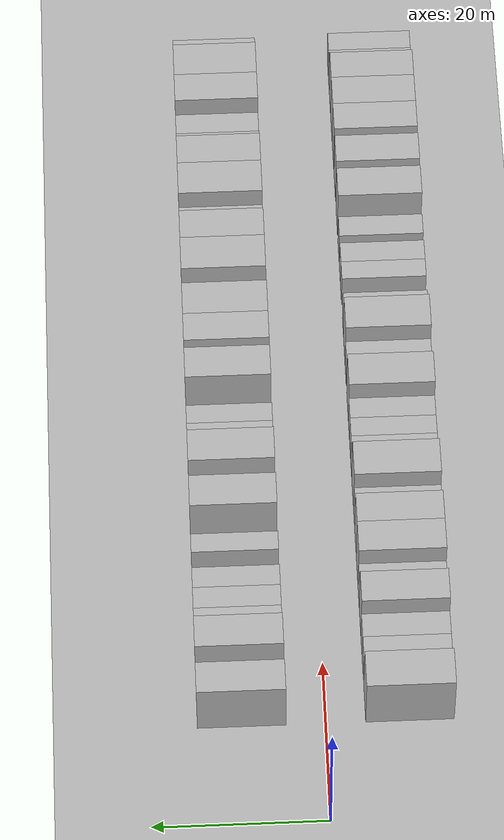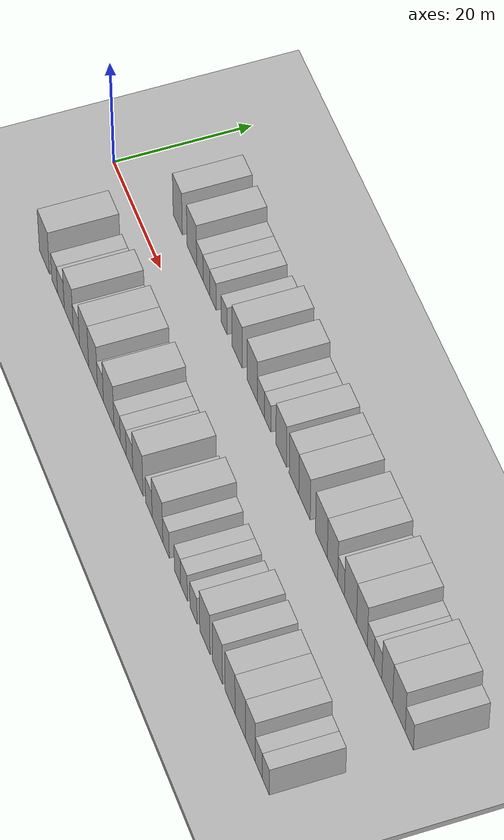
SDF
<sdf version="1.6">
 <world name="default">
  <include><name>ground_plane_1</name><uri>model://HANNAS_ground_plane</uri></include>
  <include>
   <name>ground_plane_2</name>
   <uri>model://HANNAS_ground_plane</uri>
   <pose>100 0 0  0 0 0</pose>
  </include>
  <model name="building_1">
   <static>1</static>
   <pose>13.9104 9.5000 0 0.000000 0.000000 1.570796</pose>
   <link name="link">
    <pose>0 0 4.50 0 0 0</pose>
    <collision name="collision"><geometry><box><size>10.0000 3.8207 9.0000</size></box></geometry></collision>
    <visual name="visual">
     <cast_shadows>0</cast_shadows>
     <geometry><box><size>10.0000 3.8207 9.0000</size></box></geometry>
     <material>
      <script>
       <uri>model://HANNAS_wall/materials/scripts</uri>
       <uri>model://HANNAS_wall/materials/textures</uri>
       <name>vrc/HANNAS_wall</name>
      </script>
     </material>
    </visual>
   </link>
  </model>
  <model name="building_2">
   <static>1</static>
   <pose>19.7886 9.5000 0 0.000000 0.000000 1.570796</pose>
   <link name="link">
    <pose>0 0 4.50 0 0 0</pose>
    <collision name="collision"><geometry><box><size>10.0000 3.9357 9.0000</size></box></geometry></collision>
    <visual name="visual">
     <cast_shadows>0</cast_shadows>
     <geometry><box><size>10.0000 3.9357 9.0000</size></box></geometry>
     <material>
      <script>
       <uri>model://HANNAS_wall/materials/scripts</uri>
       <uri>model://HANNAS_wall/materials/textures</uri>
       <name>vrc/HANNAS_wall</name>
      </script>
     </material>
    </visual>
   </link>
  </model>
  <model name="building_3">
   <static>1</static>
   <pose>23.0995 9.5000 0 0.000000 0.000000 1.570796</pose>
   <link name="link">
    <pose>0 0 3.00 0 0 0</pose>
    <collision name="collision"><geometry><box><size>10.0000 2.6862 6.0000</size></box></geometry></collision>
    <visual name="visual">
     <cast_shadows>0</cast_shadows>
     <geometry><box><size>10.0000 2.6862 6.0000</size></box></geometry>
     <material>
      <script>
       <uri>model://HANNAS_wall/materials/scripts</uri>
       <uri>model://HANNAS_wall/materials/textures</uri>
       <name>vrc/HANNAS_wall</name>
      </script>
     </material>
    </visual>
   </link>
  </model>
  <model name="building_4">
   <static>1</static>
   <pose>25.7818 9.5000 0 0.000000 0.000000 1.570796</pose>
   <link name="link">
    <pose>0 0 3.00 0 0 0</pose>
    <collision name="collision"><geometry><box><size>10.0000 2.6783 6.0000</size></box></geometry></collision>
    <visual name="visual">
     <cast_shadows>0</cast_shadows>
     <geometry><box><size>10.0000 2.6783 6.0000</size></box></geometry>
     <material>
      <script>
       <uri>model://HANNAS_wall/materials/scripts</uri>
       <uri>model://HANNAS_wall/materials/textures</uri>
       <name>vrc/HANNAS_wall</name>
      </script>
     </material>
    </visual>
   </link>
  </model>
  <model name="building_5">
   <static>1</static>
   <pose>28.4317 9.5000 0 0.000000 0.000000 1.570796</pose>
   <link name="link">
    <pose>0 0 3.00 0 0 0</pose>
    <collision name="collision"><geometry><box><size>10.0000 2.6215 6.0000</size></box></geometry></collision>
    <visual name="visual">
     <cast_shadows>0</cast_shadows>
     <geometry><box><size>10.0000 2.6215 6.0000</size></box></geometry>
     <material>
      <script>
       <uri>model://HANNAS_wall/materials/scripts</uri>
       <uri>model://HANNAS_wall/materials/textures</uri>
       <name>vrc/HANNAS_wall</name>
      </script>
     </material>
    </visual>
   </link>
  </model>
  <model name="building_6">
   <static>1</static>
   <pose>32.9485 9.5000 0 0.000000 0.000000 1.570796</pose>
   <link name="link">
    <pose>0 0 3.00 0 0 0</pose>
    <collision name="collision"><geometry><box><size>10.0000 2.4121 6.0000</size></box></geometry></collision>
    <visual name="visual">
     <cast_shadows>0</cast_shadows>
     <geometry><box><size>10.0000 2.4121 6.0000</size></box></geometry>
     <material>
      <script>
       <uri>model://HANNAS_wall/materials/scripts</uri>
       <uri>model://HANNAS_wall/materials/textures</uri>
       <name>vrc/HANNAS_wall</name>
      </script>
     </material>
    </visual>
   </link>
  </model>
  <model name="building_7">
   <static>1</static>
   <pose>38.1635 9.5000 0 0.000000 0.000000 1.570796</pose>
   <link name="link">
    <pose>0 0 4.50 0 0 0</pose>
    <collision name="collision"><geometry><box><size>10.0000 4.0180 9.0000</size></box></geometry></collision>
    <visual name="visual">
     <cast_shadows>0</cast_shadows>
     <geometry><box><size>10.0000 4.0180 9.0000</size></box></geometry>
     <material>
      <script>
       <uri>model://HANNAS_wall/materials/scripts</uri>
       <uri>model://HANNAS_wall/materials/textures</uri>
       <name>vrc/HANNAS_wall</name>
      </script>
     </material>
    </visual>
   </link>
  </model>
  <model name="building_8">
   <static>1</static>
   <pose>44.2379 9.5000 0 0.000000 0.000000 1.570796</pose>
   <link name="link">
    <pose>0 0 4.50 0 0 0</pose>
    <collision name="collision"><geometry><box><size>10.0000 4.1307 9.0000</size></box></geometry></collision>
    <visual name="visual">
     <cast_shadows>0</cast_shadows>
     <geometry><box><size>10.0000 4.1307 9.0000</size></box></geometry>
     <material>
      <script>
       <uri>model://HANNAS_wall/materials/scripts</uri>
       <uri>model://HANNAS_wall/materials/textures</uri>
       <name>vrc/HANNAS_wall</name>
      </script>
     </material>
    </visual>
   </link>
  </model>
  <model name="building_9">
   <static>1</static>
   <pose>47.6634 9.5000 0 0.000000 0.000000 1.570796</pose>
   <link name="link">
    <pose>0 0 3.00 0 0 0</pose>
    <collision name="collision"><geometry><box><size>10.0000 2.7204 6.0000</size></box></geometry></collision>
    <visual name="visual">
     <cast_shadows>0</cast_shadows>
     <geometry><box><size>10.0000 2.7204 6.0000</size></box></geometry>
     <material>
      <script>
       <uri>model://HANNAS_wall/materials/scripts</uri>
       <uri>model://HANNAS_wall/materials/textures</uri>
       <name>vrc/HANNAS_wall</name>
      </script>
     </material>
    </visual>
   </link>
  </model>
  <model name="building_10">
   <static>1</static>
   <pose>50.2555 9.5000 0 0.000000 0.000000 1.570796</pose>
   <link name="link">
    <pose>0 0 3.00 0 0 0</pose>
    <collision name="collision"><geometry><box><size>10.0000 2.4636 6.0000</size></box></geometry></collision>
    <visual name="visual">
     <cast_shadows>0</cast_shadows>
     <geometry><box><size>10.0000 2.4636 6.0000</size></box></geometry>
     <material>
      <script>
       <uri>model://HANNAS_wall/materials/scripts</uri>
       <uri>model://HANNAS_wall/materials/textures</uri>
       <name>vrc/HANNAS_wall</name>
      </script>
     </material>
    </visual>
   </link>
  </model>
  <model name="building_11">
   <static>1</static>
   <pose>55.5296 9.5000 0 0.000000 0.000000 1.570796</pose>
   <link name="link">
    <pose>0 0 4.50 0 0 0</pose>
    <collision name="collision"><geometry><box><size>10.0000 4.0846 9.0000</size></box></geometry></collision>
    <visual name="visual">
     <cast_shadows>0</cast_shadows>
     <geometry><box><size>10.0000 4.0846 9.0000</size></box></geometry>
     <material>
      <script>
       <uri>model://HANNAS_wall/materials/scripts</uri>
       <uri>model://HANNAS_wall/materials/textures</uri>
       <name>vrc/HANNAS_wall</name>
      </script>
     </material>
    </visual>
   </link>
  </model>
  <model name="building_12">
   <static>1</static>
   <pose>60.4304 9.5000 0 0.000000 0.000000 1.570796</pose>
   <link name="link">
    <pose>0 0 4.50 0 0 0</pose>
    <collision name="collision"><geometry><box><size>10.0000 3.7170 9.0000</size></box></geometry></collision>
    <visual name="visual">
     <cast_shadows>0</cast_shadows>
     <geometry><box><size>10.0000 3.7170 9.0000</size></box></geometry>
     <material>
      <script>
       <uri>model://HANNAS_wall/materials/scripts</uri>
       <uri>model://HANNAS_wall/materials/textures</uri>
       <name>vrc/HANNAS_wall</name>
      </script>
     </material>
    </visual>
   </link>
  </model>
  <model name="building_13">
   <static>1</static>
   <pose>64.4429 9.5000 0 0.000000 0.000000 1.570796</pose>
   <link name="link">
    <pose>0 0 4.50 0 0 0</pose>
    <collision name="collision"><geometry><box><size>10.0000 4.3080 9.0000</size></box></geometry></collision>
    <visual name="visual">
     <cast_shadows>0</cast_shadows>
     <geometry><box><size>10.0000 4.3080 9.0000</size></box></geometry>
     <material>
      <script>
       <uri>model://HANNAS_wall/materials/scripts</uri>
       <uri>model://HANNAS_wall/materials/textures</uri>
       <name>vrc/HANNAS_wall</name>
      </script>
     </material>
    </visual>
   </link>
  </model>
  <model name="building_14">
   <static>1</static>
   <pose>70.8151 9.5000 0 0.000000 0.000000 1.570796</pose>
   <link name="link">
    <pose>0 0 4.50 0 0 0</pose>
    <collision name="collision"><geometry><box><size>10.0000 4.4365 9.0000</size></box></geometry></collision>
    <visual name="visual">
     <cast_shadows>0</cast_shadows>
     <geometry><box><size>10.0000 4.4365 9.0000</size></box></geometry>
     <material>
      <script>
       <uri>model://HANNAS_wall/materials/scripts</uri>
       <uri>model://HANNAS_wall/materials/textures</uri>
       <name>vrc/HANNAS_wall</name>
      </script>
     </material>
    </visual>
   </link>
  </model>
  <model name="building_15">
   <static>1</static>
   <pose>74.9589 9.5000 0 0.000000 0.000000 1.570796</pose>
   <link name="link">
    <pose>0 0 4.50 0 0 0</pose>
    <collision name="collision"><geometry><box><size>10.0000 3.8510 9.0000</size></box></geometry></collision>
    <visual name="visual">
     <cast_shadows>0</cast_shadows>
     <geometry><box><size>10.0000 3.8510 9.0000</size></box></geometry>
     <material>
      <script>
       <uri>model://HANNAS_wall/materials/scripts</uri>
       <uri>model://HANNAS_wall/materials/textures</uri>
       <name>vrc/HANNAS_wall</name>
      </script>
     </material>
    </visual>
   </link>
  </model>
  <model name="building_16">
   <static>1</static>
   <pose>78.1295 9.5000 0 0.000000 0.000000 1.570796</pose>
   <link name="link">
    <pose>0 0 3.00 0 0 0</pose>
    <collision name="collision"><geometry><box><size>10.0000 2.4902 6.0000</size></box></geometry></collision>
    <visual name="visual">
     <cast_shadows>0</cast_shadows>
     <geometry><box><size>10.0000 2.4902 6.0000</size></box></geometry>
     <material>
      <script>
       <uri>model://HANNAS_wall/materials/scripts</uri>
       <uri>model://HANNAS_wall/materials/textures</uri>
       <name>vrc/HANNAS_wall</name>
      </script>
     </material>
    </visual>
   </link>
  </model>
  <model name="building_17">
   <static>1</static>
   <pose>81.5890 9.5000 0 0.000000 0.000000 1.570796</pose>
   <link name="link">
    <pose>0 0 4.50 0 0 0</pose>
    <collision name="collision"><geometry><box><size>10.0000 4.4287 9.0000</size></box></geometry></collision>
    <visual name="visual">
     <cast_shadows>0</cast_shadows>
     <geometry><box><size>10.0000 4.4287 9.0000</size></box></geometry>
     <material>
      <script>
       <uri>model://HANNAS_wall/materials/scripts</uri>
       <uri>model://HANNAS_wall/materials/textures</uri>
       <name>vrc/HANNAS_wall</name>
      </script>
     </material>
    </visual>
   </link>
  </model>
  <model name="building_18">
   <static>1</static>
   <pose>85.7717 9.5000 0 0.000000 0.000000 1.570796</pose>
   <link name="link">
    <pose>0 0 4.50 0 0 0</pose>
    <collision name="collision"><geometry><box><size>10.0000 3.9368 9.0000</size></box></geometry></collision>
    <visual name="visual">
     <cast_shadows>0</cast_shadows>
     <geometry><box><size>10.0000 3.9368 9.0000</size></box></geometry>
     <material>
      <script>
       <uri>model://HANNAS_wall/materials/scripts</uri>
       <uri>model://HANNAS_wall/materials/textures</uri>
       <name>vrc/HANNAS_wall</name>
      </script>
     </material>
    </visual>
   </link>
  </model>
  <model name="building_19">
   <static>1</static>
   <pose>88.9644 9.5000 0 0.000000 0.000000 1.570796</pose>
   <link name="link">
    <pose>0 0 3.00 0 0 0</pose>
    <collision name="collision"><geometry><box><size>10.0000 2.4485 6.0000</size></box></geometry></collision>
    <visual name="visual">
     <cast_shadows>0</cast_shadows>
     <geometry><box><size>10.0000 2.4485 6.0000</size></box></geometry>
     <material>
      <script>
       <uri>model://HANNAS_wall/materials/scripts</uri>
       <uri>model://HANNAS_wall/materials/textures</uri>
       <name>vrc/HANNAS_wall</name>
      </script>
     </material>
    </visual>
   </link>
  </model>
  <model name="building_20">
   <static>1</static>
   <pose>91.5721 9.5000 0 0.000000 0.000000 1.570796</pose>
   <link name="link">
    <pose>0 0 3.00 0 0 0</pose>
    <collision name="collision"><geometry><box><size>10.0000 2.7670 6.0000</size></box></geometry></collision>
    <visual name="visual">
     <cast_shadows>0</cast_shadows>
     <geometry><box><size>10.0000 2.7670 6.0000</size></box></geometry>
     <material>
      <script>
       <uri>model://HANNAS_wall/materials/scripts</uri>
       <uri>model://HANNAS_wall/materials/textures</uri>
       <name>vrc/HANNAS_wall</name>
      </script>
     </material>
    </visual>
   </link>
  </model>
  <model name="building_21">
   <static>1</static>
   <pose>94.8880 9.5000 0 0.000000 0.000000 1.570796</pose>
   <link name="link">
    <pose>0 0 4.50 0 0 0</pose>
    <collision name="collision"><geometry><box><size>10.0000 3.8647 9.0000</size></box></geometry></collision>
    <visual name="visual">
     <cast_shadows>0</cast_shadows>
     <geometry><box><size>10.0000 3.8647 9.0000</size></box></geometry>
     <material>
      <script>
       <uri>model://HANNAS_wall/materials/scripts</uri>
       <uri>model://HANNAS_wall/materials/textures</uri>
       <name>vrc/HANNAS_wall</name>
      </script>
     </material>
    </visual>
   </link>
  </model>
  <model name="building_22">
   <static>1</static>
   <pose>99.0522 9.5000 0 0.000000 0.000000 1.570796</pose>
   <link name="link">
    <pose>0 0 4.50 0 0 0</pose>
    <collision name="collision"><geometry><box><size>10.0000 4.4638 9.0000</size></box></geometry></collision>
    <visual name="visual">
     <cast_shadows>0</cast_shadows>
     <geometry><box><size>10.0000 4.4638 9.0000</size></box></geometry>
     <material>
      <script>
       <uri>model://HANNAS_wall/materials/scripts</uri>
       <uri>model://HANNAS_wall/materials/textures</uri>
       <name>vrc/HANNAS_wall</name>
      </script>
     </material>
    </visual>
   </link>
  </model>
  <model name="building_23">
   <static>1</static>
   <pose>102.7219 9.5000 0 0.000000 0.000000 1.570796</pose>
   <link name="link">
    <pose>0 0 3.00 0 0 0</pose>
    <collision name="collision"><geometry><box><size>10.0000 2.8756 6.0000</size></box></geometry></collision>
    <visual name="visual">
     <cast_shadows>0</cast_shadows>
     <geometry><box><size>10.0000 2.8756 6.0000</size></box></geometry>
     <material>
      <script>
       <uri>model://HANNAS_wall/materials/scripts</uri>
       <uri>model://HANNAS_wall/materials/textures</uri>
       <name>vrc/HANNAS_wall</name>
      </script>
     </material>
    </visual>
   </link>
  </model>
  <model name="building_49">
   <static>1</static>
   <pose>14.2105 -9.5000 0 0.000000 0.000000 1.570796</pose>
   <link name="link">
    <pose>0 0 4.50 0 0 0</pose>
    <collision name="collision"><geometry><box><size>10.0000 4.4210 9.0000</size></box></geometry></collision>
    <visual name="visual">
     <cast_shadows>0</cast_shadows>
     <geometry><box><size>10.0000 4.4210 9.0000</size></box></geometry>
     <material>
      <script>
       <uri>model://HANNAS_wall/materials/scripts</uri>
       <uri>model://HANNAS_wall/materials/textures</uri>
       <name>vrc/HANNAS_wall</name>
      </script>
     </material>
    </visual>
   </link>
  </model>
  <model name="building_50">
   <static>1</static>
   <pose>18.6855 -9.5000 0 0.000000 0.000000 1.570796</pose>
   <link name="link">
    <pose>0 0 3.00 0 0 0</pose>
    <collision name="collision"><geometry><box><size>10.0000 2.5291 6.0000</size></box></geometry></collision>
    <visual name="visual">
     <cast_shadows>0</cast_shadows>
     <geometry><box><size>10.0000 2.5291 6.0000</size></box></geometry>
     <material>
      <script>
       <uri>model://HANNAS_wall/materials/scripts</uri>
       <uri>model://HANNAS_wall/materials/textures</uri>
       <name>vrc/HANNAS_wall</name>
      </script>
     </material>
    </visual>
   </link>
  </model>
  <model name="building_51">
   <static>1</static>
   <pose>21.4126 -9.5000 0 0.000000 0.000000 1.570796</pose>
   <link name="link">
    <pose>0 0 3.00 0 0 0</pose>
    <collision name="collision"><geometry><box><size>10.0000 2.9251 6.0000</size></box></geometry></collision>
    <visual name="visual">
     <cast_shadows>0</cast_shadows>
     <geometry><box><size>10.0000 2.9251 6.0000</size></box></geometry>
     <material>
      <script>
       <uri>model://HANNAS_wall/materials/scripts</uri>
       <uri>model://HANNAS_wall/materials/textures</uri>
       <name>vrc/HANNAS_wall</name>
      </script>
     </material>
    </visual>
   </link>
  </model>
  <model name="building_52">
   <static>1</static>
   <pose>24.7919 -9.5000 0 0.000000 0.000000 1.570796</pose>
   <link name="link">
    <pose>0 0 4.50 0 0 0</pose>
    <collision name="collision"><geometry><box><size>10.0000 3.8335 9.0000</size></box></geometry></collision>
    <visual name="visual">
     <cast_shadows>0</cast_shadows>
     <geometry><box><size>10.0000 3.8335 9.0000</size></box></geometry>
     <material>
      <script>
       <uri>model://HANNAS_wall/materials/scripts</uri>
       <uri>model://HANNAS_wall/materials/textures</uri>
       <name>vrc/HANNAS_wall</name>
      </script>
     </material>
    </visual>
   </link>
  </model>
  <model name="building_53">
   <static>1</static>
   <pose>28.0637 -9.5000 0 0.000000 0.000000 1.570796</pose>
   <link name="link">
    <pose>0 0 3.00 0 0 0</pose>
    <collision name="collision"><geometry><box><size>10.0000 2.7101 6.0000</size></box></geometry></collision>
    <visual name="visual">
     <cast_shadows>0</cast_shadows>
     <geometry><box><size>10.0000 2.7101 6.0000</size></box></geometry>
     <material>
      <script>
       <uri>model://HANNAS_wall/materials/scripts</uri>
       <uri>model://HANNAS_wall/materials/textures</uri>
       <name>vrc/HANNAS_wall</name>
      </script>
     </material>
    </visual>
   </link>
  </model>
  <model name="building_54">
   <static>1</static>
   <pose>31.3516 -9.5000 0 0.000000 0.000000 1.570796</pose>
   <link name="link">
    <pose>0 0 4.50 0 0 0</pose>
    <collision name="collision"><geometry><box><size>10.0000 3.8658 9.0000</size></box></geometry></collision>
    <visual name="visual">
     <cast_shadows>0</cast_shadows>
     <geometry><box><size>10.0000 3.8658 9.0000</size></box></geometry>
     <material>
      <script>
       <uri>model://HANNAS_wall/materials/scripts</uri>
       <uri>model://HANNAS_wall/materials/textures</uri>
       <name>vrc/HANNAS_wall</name>
      </script>
     </material>
    </visual>
   </link>
  </model>
  <model name="building_55">
   <static>1</static>
   <pose>35.1412 -9.5000 0 0.000000 0.000000 1.570796</pose>
   <link name="link">
    <pose>0 0 4.50 0 0 0</pose>
    <collision name="collision"><geometry><box><size>10.0000 3.7134 9.0000</size></box></geometry></collision>
    <visual name="visual">
     <cast_shadows>0</cast_shadows>
     <geometry><box><size>10.0000 3.7134 9.0000</size></box></geometry>
     <material>
      <script>
       <uri>model://HANNAS_wall/materials/scripts</uri>
       <uri>model://HANNAS_wall/materials/textures</uri>
       <name>vrc/HANNAS_wall</name>
      </script>
     </material>
    </visual>
   </link>
  </model>
  <model name="building_56">
   <static>1</static>
   <pose>38.2589 -9.5000 0 0.000000 0.000000 1.570796</pose>
   <link name="link">
    <pose>0 0 3.00 0 0 0</pose>
    <collision name="collision"><geometry><box><size>10.0000 2.5218 6.0000</size></box></geometry></collision>
    <visual name="visual">
     <cast_shadows>0</cast_shadows>
     <geometry><box><size>10.0000 2.5218 6.0000</size></box></geometry>
     <material>
      <script>
       <uri>model://HANNAS_wall/materials/scripts</uri>
       <uri>model://HANNAS_wall/materials/textures</uri>
       <name>vrc/HANNAS_wall</name>
      </script>
     </material>
    </visual>
   </link>
  </model>
  <model name="building_57">
   <static>1</static>
   <pose>41.7193 -9.5000 0 0.000000 0.000000 1.570796</pose>
   <link name="link">
    <pose>0 0 4.50 0 0 0</pose>
    <collision name="collision"><geometry><box><size>10.0000 4.3990 9.0000</size></box></geometry></collision>
    <visual name="visual">
     <cast_shadows>0</cast_shadows>
     <geometry><box><size>10.0000 4.3990 9.0000</size></box></geometry>
     <material>
      <script>
       <uri>model://HANNAS_wall/materials/scripts</uri>
       <uri>model://HANNAS_wall/materials/textures</uri>
       <name>vrc/HANNAS_wall</name>
      </script>
     </material>
    </visual>
   </link>
  </model>
  <model name="building_58">
   <static>1</static>
   <pose>45.2182 -9.5000 0 0.000000 0.000000 1.570796</pose>
   <link name="link">
    <pose>0 0 3.00 0 0 0</pose>
    <collision name="collision"><geometry><box><size>10.0000 2.5990 6.0000</size></box></geometry></collision>
    <visual name="visual">
     <cast_shadows>0</cast_shadows>
     <geometry><box><size>10.0000 2.5990 6.0000</size></box></geometry>
     <material>
      <script>
       <uri>model://HANNAS_wall/materials/scripts</uri>
       <uri>model://HANNAS_wall/materials/textures</uri>
       <name>vrc/HANNAS_wall</name>
      </script>
     </material>
    </visual>
   </link>
  </model>
  <model name="building_59">
   <static>1</static>
   <pose>47.7507 -9.5000 0 0.000000 0.000000 1.570796</pose>
   <link name="link">
    <pose>0 0 3.00 0 0 0</pose>
    <collision name="collision"><geometry><box><size>10.0000 2.4661 6.0000</size></box></geometry></collision>
    <visual name="visual">
     <cast_shadows>0</cast_shadows>
     <geometry><box><size>10.0000 2.4661 6.0000</size></box></geometry>
     <material>
      <script>
       <uri>model://HANNAS_wall/materials/scripts</uri>
       <uri>model://HANNAS_wall/materials/textures</uri>
       <name>vrc/HANNAS_wall</name>
      </script>
     </material>
    </visual>
   </link>
  </model>
  <model name="building_60">
   <static>1</static>
   <pose>50.3217 -9.5000 0 0.000000 0.000000 1.570796</pose>
   <link name="link">
    <pose>0 0 3.00 0 0 0</pose>
    <collision name="collision"><geometry><box><size>10.0000 2.6757 6.0000</size></box></geometry></collision>
    <visual name="visual">
     <cast_shadows>0</cast_shadows>
     <geometry><box><size>10.0000 2.6757 6.0000</size></box></geometry>
     <material>
      <script>
       <uri>model://HANNAS_wall/materials/scripts</uri>
       <uri>model://HANNAS_wall/materials/textures</uri>
       <name>vrc/HANNAS_wall</name>
      </script>
     </material>
    </visual>
   </link>
  </model>
  <model name="building_61">
   <static>1</static>
   <pose>53.7549 -9.5000 0 0.000000 0.000000 1.570796</pose>
   <link name="link">
    <pose>0 0 4.50 0 0 0</pose>
    <collision name="collision"><geometry><box><size>10.0000 4.1908 9.0000</size></box></geometry></collision>
    <visual name="visual">
     <cast_shadows>0</cast_shadows>
     <geometry><box><size>10.0000 4.1908 9.0000</size></box></geometry>
     <material>
      <script>
       <uri>model://HANNAS_wall/materials/scripts</uri>
       <uri>model://HANNAS_wall/materials/textures</uri>
       <name>vrc/HANNAS_wall</name>
      </script>
     </material>
    </visual>
   </link>
  </model>
  <model name="building_62">
   <static>1</static>
   <pose>58.1756 -9.5000 0 0.000000 0.000000 1.570796</pose>
   <link name="link">
    <pose>0 0 3.00 0 0 0</pose>
    <collision name="collision"><geometry><box><size>10.0000 2.6504 6.0000</size></box></geometry></collision>
    <visual name="visual">
     <cast_shadows>0</cast_shadows>
     <geometry><box><size>10.0000 2.6504 6.0000</size></box></geometry>
     <material>
      <script>
       <uri>model://HANNAS_wall/materials/scripts</uri>
       <uri>model://HANNAS_wall/materials/textures</uri>
       <name>vrc/HANNAS_wall</name>
      </script>
     </material>
    </visual>
   </link>
  </model>
  <model name="building_63">
   <static>1</static>
   <pose>61.6354 -9.5000 0 0.000000 0.000000 1.570796</pose>
   <link name="link">
    <pose>0 0 4.50 0 0 0</pose>
    <collision name="collision"><geometry><box><size>10.0000 4.2693 9.0000</size></box></geometry></collision>
    <visual name="visual">
     <cast_shadows>0</cast_shadows>
     <geometry><box><size>10.0000 4.2693 9.0000</size></box></geometry>
     <material>
      <script>
       <uri>model://HANNAS_wall/materials/scripts</uri>
       <uri>model://HANNAS_wall/materials/textures</uri>
       <name>vrc/HANNAS_wall</name>
      </script>
     </material>
    </visual>
   </link>
  </model>
  <model name="building_64">
   <static>1</static>
   <pose>65.0605 -9.5000 0 0.000000 0.000000 1.570796</pose>
   <link name="link">
    <pose>0 0 3.00 0 0 0</pose>
    <collision name="collision"><geometry><box><size>10.0000 2.5809 6.0000</size></box></geometry></collision>
    <visual name="visual">
     <cast_shadows>0</cast_shadows>
     <geometry><box><size>10.0000 2.5809 6.0000</size></box></geometry>
     <material>
      <script>
       <uri>model://HANNAS_wall/materials/scripts</uri>
       <uri>model://HANNAS_wall/materials/textures</uri>
       <name>vrc/HANNAS_wall</name>
      </script>
     </material>
    </visual>
   </link>
  </model>
  <model name="building_65">
   <static>1</static>
   <pose>69.5703 -9.5000 0 0.000000 0.000000 1.570796</pose>
   <link name="link">
    <pose>0 0 3.00 0 0 0</pose>
    <collision name="collision"><geometry><box><size>10.0000 2.4389 6.0000</size></box></geometry></collision>
    <visual name="visual">
     <cast_shadows>0</cast_shadows>
     <geometry><box><size>10.0000 2.4389 6.0000</size></box></geometry>
     <material>
      <script>
       <uri>model://HANNAS_wall/materials/scripts</uri>
       <uri>model://HANNAS_wall/materials/textures</uri>
       <name>vrc/HANNAS_wall</name>
      </script>
     </material>
    </visual>
   </link>
  </model>
  <model name="building_66">
   <static>1</static>
   <pose>72.1307 -9.5000 0 0.000000 0.000000 1.570796</pose>
   <link name="link">
    <pose>0 0 3.00 0 0 0</pose>
    <collision name="collision"><geometry><box><size>10.0000 2.6818 6.0000</size></box></geometry></collision>
    <visual name="visual">
     <cast_shadows>0</cast_shadows>
     <geometry><box><size>10.0000 2.6818 6.0000</size></box></geometry>
     <material>
      <script>
       <uri>model://HANNAS_wall/materials/scripts</uri>
       <uri>model://HANNAS_wall/materials/textures</uri>
       <name>vrc/HANNAS_wall</name>
      </script>
     </material>
    </visual>
   </link>
  </model>
  <model name="building_67">
   <static>1</static>
   <pose>75.8547 -9.5000 0 0.000000 0.000000 1.570796</pose>
   <link name="link">
    <pose>0 0 3.00 0 0 0</pose>
    <collision name="collision"><geometry><box><size>10.0000 2.7661 6.0000</size></box></geometry></collision>
    <visual name="visual">
     <cast_shadows>0</cast_shadows>
     <geometry><box><size>10.0000 2.7661 6.0000</size></box></geometry>
     <material>
      <script>
       <uri>model://HANNAS_wall/materials/scripts</uri>
       <uri>model://HANNAS_wall/materials/textures</uri>
       <name>vrc/HANNAS_wall</name>
      </script>
     </material>
    </visual>
   </link>
  </model>
  <model name="building_68">
   <static>1</static>
   <pose>80.2290 -9.5000 0 0.000000 0.000000 1.570796</pose>
   <link name="link">
    <pose>0 0 4.50 0 0 0</pose>
    <collision name="collision"><geometry><box><size>10.0000 3.9826 9.0000</size></box></geometry></collision>
    <visual name="visual">
     <cast_shadows>0</cast_shadows>
     <geometry><box><size>10.0000 3.9826 9.0000</size></box></geometry>
     <material>
      <script>
       <uri>model://HANNAS_wall/materials/scripts</uri>
       <uri>model://HANNAS_wall/materials/textures</uri>
       <name>vrc/HANNAS_wall</name>
      </script>
     </material>
    </visual>
   </link>
  </model>
  <model name="building_69">
   <static>1</static>
   <pose>85.1029 -9.5000 0 0.000000 0.000000 1.570796</pose>
   <link name="link">
    <pose>0 0 4.50 0 0 0</pose>
    <collision name="collision"><geometry><box><size>10.0000 3.7651 9.0000</size></box></geometry></collision>
    <visual name="visual">
     <cast_shadows>0</cast_shadows>
     <geometry><box><size>10.0000 3.7651 9.0000</size></box></geometry>
     <material>
      <script>
       <uri>model://HANNAS_wall/materials/scripts</uri>
       <uri>model://HANNAS_wall/materials/textures</uri>
       <name>vrc/HANNAS_wall</name>
      </script>
     </material>
    </visual>
   </link>
  </model>
  <model name="building_70">
   <static>1</static>
   <pose>89.8610 -9.5000 0 0.000000 0.000000 1.570796</pose>
   <link name="link">
    <pose>0 0 4.50 0 0 0</pose>
    <collision name="collision"><geometry><box><size>10.0000 3.7511 9.0000</size></box></geometry></collision>
    <visual name="visual">
     <cast_shadows>0</cast_shadows>
     <geometry><box><size>10.0000 3.7511 9.0000</size></box></geometry>
     <material>
      <script>
       <uri>model://HANNAS_wall/materials/scripts</uri>
       <uri>model://HANNAS_wall/materials/textures</uri>
       <name>vrc/HANNAS_wall</name>
      </script>
     </material>
    </visual>
   </link>
  </model>
  <model name="building_71">
   <static>1</static>
   <pose>93.6849 -9.5000 0 0.000000 0.000000 1.570796</pose>
   <link name="link">
    <pose>0 0 4.50 0 0 0</pose>
    <collision name="collision"><geometry><box><size>10.0000 3.8967 9.0000</size></box></geometry></collision>
    <visual name="visual">
     <cast_shadows>0</cast_shadows>
     <geometry><box><size>10.0000 3.8967 9.0000</size></box></geometry>
     <material>
      <script>
       <uri>model://HANNAS_wall/materials/scripts</uri>
       <uri>model://HANNAS_wall/materials/textures</uri>
       <name>vrc/HANNAS_wall</name>
      </script>
     </material>
    </visual>
   </link>
  </model>
  <model name="building_72">
   <static>1</static>
   <pose>97.4894 -9.5000 0 0.000000 0.000000 1.570796</pose>
   <link name="link">
    <pose>0 0 4.50 0 0 0</pose>
    <collision name="collision"><geometry><box><size>10.0000 3.7125 9.0000</size></box></geometry></collision>
    <visual name="visual">
     <cast_shadows>0</cast_shadows>
     <geometry><box><size>10.0000 3.7125 9.0000</size></box></geometry>
     <material>
      <script>
       <uri>model://HANNAS_wall/materials/scripts</uri>
       <uri>model://HANNAS_wall/materials/textures</uri>
       <name>vrc/HANNAS_wall</name>
      </script>
     </material>
    </visual>
   </link>
  </model>
  <model name="building_73">
   <static>1</static>
   <pose>100.6182 -9.5000 0 0.000000 0.000000 1.570796</pose>
   <link name="link">
    <pose>0 0 3.00 0 0 0</pose>
    <collision name="collision"><geometry><box><size>10.0000 2.5451 6.0000</size></box></geometry></collision>
    <visual name="visual">
     <cast_shadows>0</cast_shadows>
     <geometry><box><size>10.0000 2.5451 6.0000</size></box></geometry>
     <material>
      <script>
       <uri>model://HANNAS_wall/materials/scripts</uri>
       <uri>model://HANNAS_wall/materials/textures</uri>
       <name>vrc/HANNAS_wall</name>
      </script>
     </material>
    </visual>
   </link>
  </model>
  <model name="building_74">
   <static>1</static>
   <pose>103.1758 -9.5000 0 0.000000 0.000000 1.570796</pose>
   <link name="link">
    <pose>0 0 3.00 0 0 0</pose>
    <collision name="collision"><geometry><box><size>10.0000 2.5702 6.0000</size></box></geometry></collision>
    <visual name="visual">
     <cast_shadows>0</cast_shadows>
     <geometry><box><size>10.0000 2.5702 6.0000</size></box></geometry>
     <material>
      <script>
       <uri>model://HANNAS_wall/materials/scripts</uri>
       <uri>model://HANNAS_wall/materials/textures</uri>
       <name>vrc/HANNAS_wall</name>
      </script>
     </material>
    </visual>
   </link>
  </model>
 </world>
</sdf>
